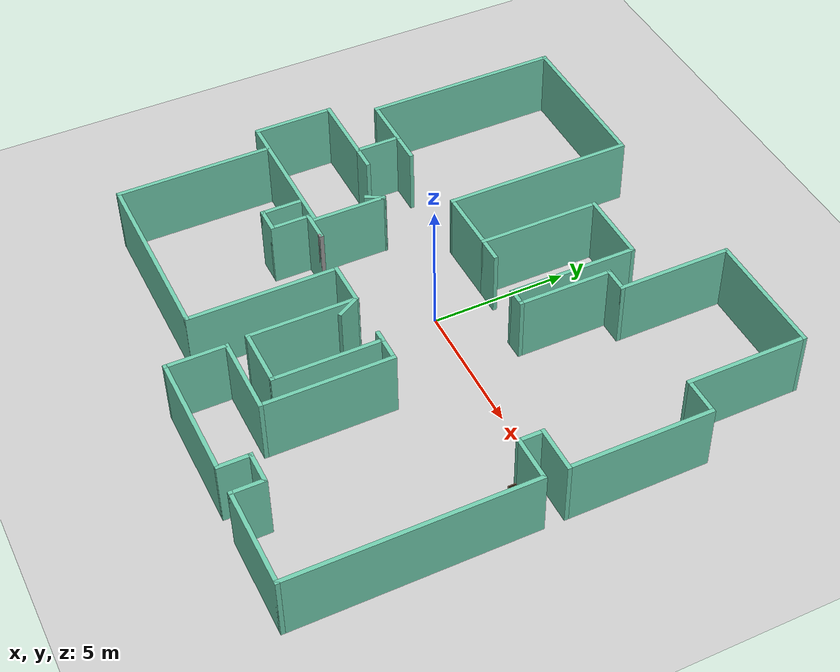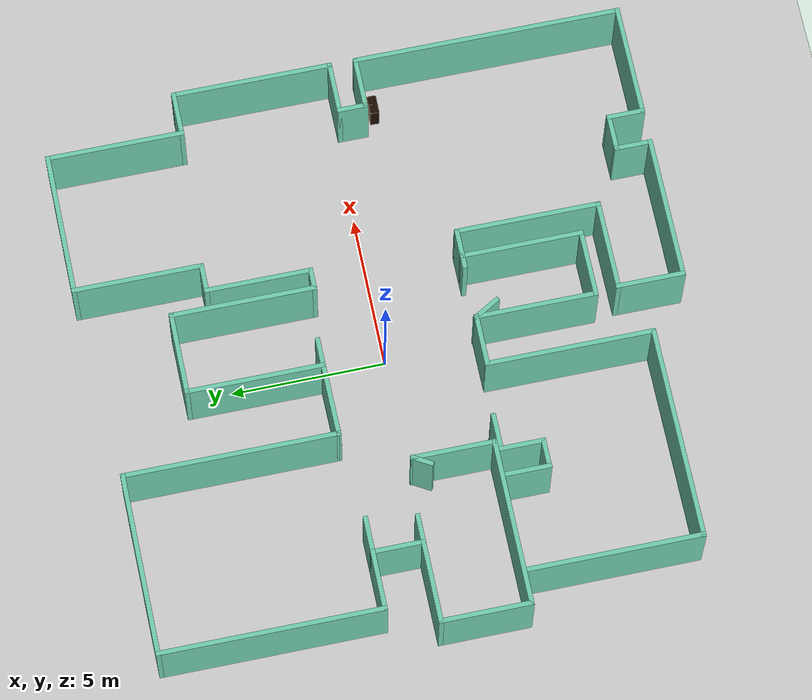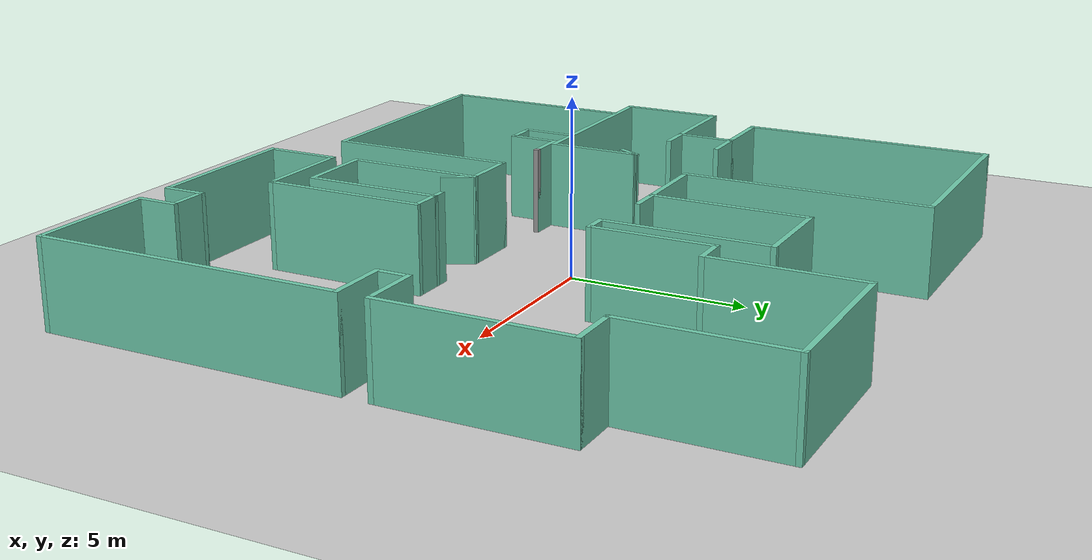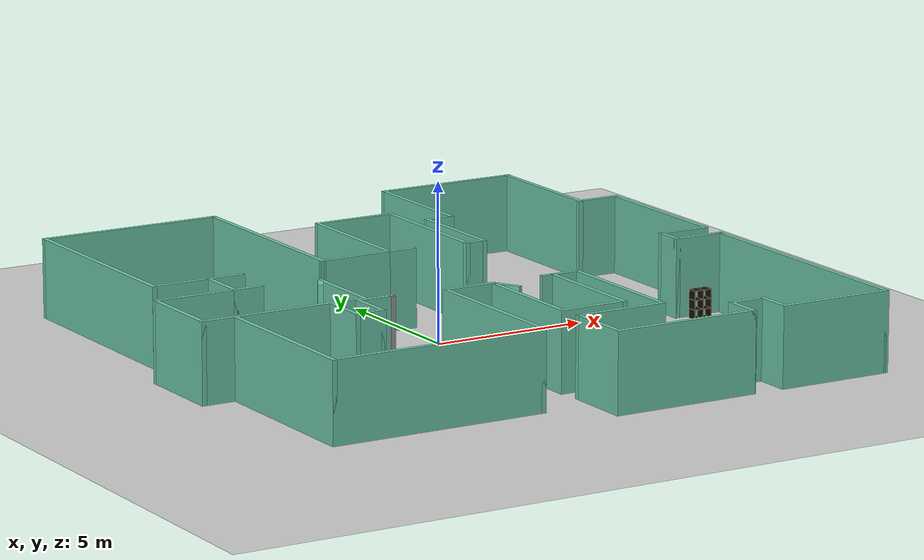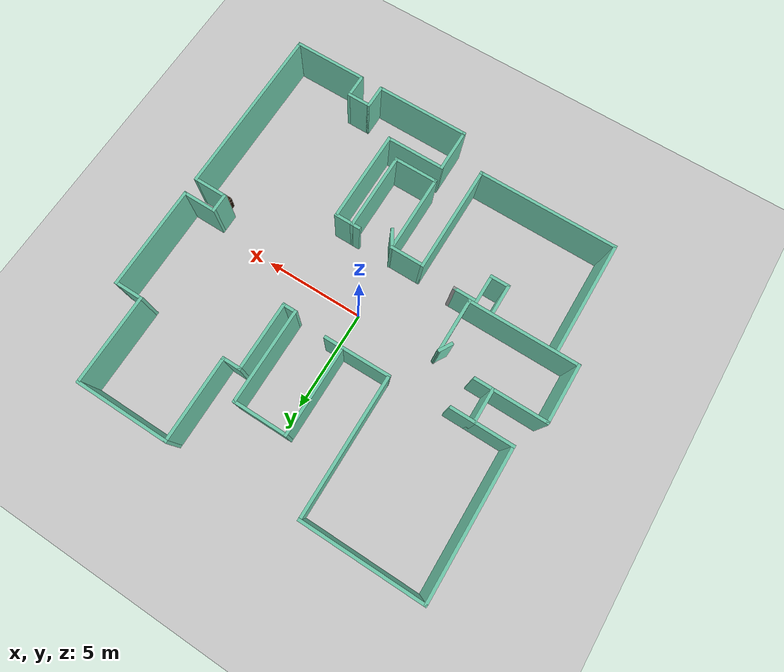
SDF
<sdf version="1.6">
 <world name="default">
  <model name="ground_plane">
   <static>1</static>
   <link name="link">
    <collision name="collision">
     <geometry><plane><normal>0 0 1</normal><size>100 100</size></plane></geometry>
     <surface>
      <contact><collide_bitmask>65535</collide_bitmask></contact>
      <friction><ode><mu>100</mu><mu2>50</mu2></ode></friction>
     </surface>
    </collision>
    <visual name="visual">
     <cast_shadows>0</cast_shadows>
     <geometry><plane><normal>0 0 1</normal><size>100 100</size></plane></geometry>
     <material>
      <script><uri>file://media/materials/scripts/gazebo.material</uri><name>Gazebo/Grey</name></script>
     </material>
    </visual>
   </link>
  </model>
  <model name="map_107">
   <pose>0.048167 -0.172119 0 0 -0 0</pose>
   <link name="Wall_10">
    <collision name="Wall_10_Collision">
     <geometry><box><size>2.75 0.15 2.5</size></box></geometry>
     <pose>0 0 1.25 0 -0 0</pose>
    </collision>
    <visual name="Wall_10_Visual">
     <pose>0 0 1.25 0 -0 0</pose>
     <geometry><box><size>2.75 0.15 2.5</size></box></geometry>
     <material>
      <script><uri>file://media/materials/scripts/gazebo.material</uri><name>Gazebo/Grey</name></script>
      <ambient>0.435294 0.796078 0.67451 1</ambient>
     </material>
     <meta><layer>0</layer></meta>
    </visual>
    <pose>-8.15979 0.403769 0 0 -0 3.14159</pose>
   </link>
   <link name="Wall_11">
    <collision name="Wall_11_Collision">
     <geometry><box><size>3 0.15 2.5</size></box></geometry>
     <pose>0 0 1.25 0 -0 0</pose>
    </collision>
    <visual name="Wall_11_Visual">
     <pose>0 0 1.25 0 -0 0</pose>
     <geometry><box><size>3 0.15 2.5</size></box></geometry>
     <material>
      <script><uri>file://media/materials/scripts/gazebo.material</uri><name>Gazebo/Grey</name></script>
      <ambient>0.435294 0.796078 0.67451 1</ambient>
     </material>
     <meta><layer>0</layer></meta>
    </visual>
    <pose>-9.45979 -1.02123 0 0 -0 -1.5708</pose>
   </link>
   <link name="Wall_12">
    <collision name="Wall_12_Collision">
     <geometry><box><size>5.5 0.15 2.5</size></box></geometry>
     <pose>0 0 1.25 0 -0 0</pose>
    </collision>
    <visual name="Wall_12_Visual">
     <pose>0 0 1.25 0 -0 0</pose>
     <geometry><box><size>5.5 0.15 2.5</size></box></geometry>
     <material>
      <script><uri>file://media/materials/scripts/gazebo.material</uri><name>Gazebo/Grey</name></script>
      <ambient>0.435294 0.796078 0.67451 1</ambient>
     </material>
     <meta><layer>0</layer></meta>
    </visual>
    <pose>-6.78479 -2.44623 0 0 -0 0</pose>
   </link>
   <link name="Wall_13">
    <collision name="Wall_13_Collision">
     <geometry><box><size>2.75 0.15 2.5</size></box></geometry>
     <pose>0 0 1.25 0 -0 0</pose>
    </collision>
    <visual name="Wall_13_Visual">
     <pose>0 0 1.25 0 -0 0</pose>
     <geometry><box><size>2.75 0.15 2.5</size></box></geometry>
     <material>
      <script><uri>file://media/materials/scripts/gazebo.material</uri><name>Gazebo/Grey</name></script>
      <ambient>0.435294 0.796078 0.67451 1</ambient>
     </material>
     <meta><layer>0</layer></meta>
    </visual>
    <pose>-4.10979 -1.14623 0 0 -0 1.5708</pose>
   </link>
   <link name="Wall_16">
    <collision name="Wall_16_Collision">
     <geometry><box><size>5.75 0.15 2.5</size></box></geometry>
     <pose>0 0 1.25 0 -0 0</pose>
    </collision>
    <visual name="Wall_16_Visual">
     <pose>0 0 1.25 0 -0 0</pose>
     <geometry><box><size>5.75 0.15 2.5</size></box></geometry>
     <material>
      <script><uri>file://media/materials/scripts/gazebo.material</uri><name>Gazebo/Grey</name></script>
      <ambient>0.435294 0.796078 0.67451 1</ambient>
     </material>
     <meta><layer>0</layer></meta>
    </visual>
    <pose>-8.39021 -5.325 0 0 -0 -1.5708</pose>
   </link>
   <link name="Wall_17">
    <collision name="Wall_17_Collision">
     <geometry><box><size>7 0.15 2.5</size></box></geometry>
     <pose>0 0 1.25 0 -0 0</pose>
    </collision>
    <visual name="Wall_17_Visual">
     <pose>0 0 1.25 0 -0 0</pose>
     <geometry><box><size>7 0.15 2.5</size></box></geometry>
     <material>
      <script><uri>file://media/materials/scripts/gazebo.material</uri><name>Gazebo/Grey</name></script>
      <ambient>0.435294 0.796078 0.67451 1</ambient>
     </material>
     <meta><layer>0</layer></meta>
    </visual>
    <pose>-4.96521 -8.125 0 0 -0 0</pose>
   </link>
   <link name="Wall_28">
    <collision name="Wall_28_Collision">
     <geometry><box><size>1.5 0.15 2.5</size></box></geometry>
     <pose>0 0 1.25 0 -0 0</pose>
    </collision>
    <visual name="Wall_28_Visual">
     <pose>0 0 1.25 0 -0 0</pose>
     <geometry><box><size>1.5 0.15 2.5</size></box></geometry>
     <material>
      <script><uri>file://media/materials/scripts/gazebo.material</uri><name>Gazebo/Grey</name></script>
      <ambient>0.435294 0.796078 0.67451 1</ambient>
     </material>
     <meta><layer>0</layer></meta>
    </visual>
    <pose>-5.23543 -3.27116 0 0 -0 -1.5708</pose>
   </link>
   <link name="Wall_29">
    <collision name="Wall_29_Collision">
     <geometry><box><size>1 0.15 2.5</size></box></geometry>
     <pose>0 0 1.25 0 -0 0</pose>
    </collision>
    <visual name="Wall_29_Visual">
     <pose>0 0 1.25 0 -0 0</pose>
     <geometry><box><size>1 0.15 2.5</size></box></geometry>
     <material>
      <script><uri>file://media/materials/scripts/gazebo.material</uri><name>Gazebo/Grey</name></script>
      <ambient>0.435294 0.796078 0.67451 1</ambient>
     </material>
     <meta><layer>0</layer></meta>
    </visual>
    <pose>-4.81043 -3.94616 0 0 -0 0</pose>
   </link>
   <link name="Wall_30">
    <collision name="Wall_30_Collision">
     <geometry><box><size>1.5 0.15 2.5</size></box></geometry>
     <pose>0 0 1.25 0 -0 0</pose>
    </collision>
    <visual name="Wall_30_Visual">
     <pose>0 0 1.25 0 -0 0</pose>
     <geometry><box><size>1.5 0.15 2.5</size></box></geometry>
     <material>
      <script><uri>file://media/materials/scripts/gazebo.material</uri><name>Gazebo/Grey</name></script>
      <ambient>0.435294 0.796078 0.67451 1</ambient>
     </material>
     <meta><layer>0</layer></meta>
    </visual>
    <pose>-4.38542 -3.27116 0 0 -0 1.5708</pose>
   </link>
   <link name="Wall_31">
    <collision name="Wall_31_Collision">
     <geometry><box><size>1.25 0.15 2.5</size></box></geometry>
     <pose>0 0 1.25 0 -0 0</pose>
    </collision>
    <visual name="Wall_31_Visual">
     <pose>0 0 1.25 0 -0 0</pose>
     <geometry><box><size>1.25 0.15 2.5</size></box></geometry>
     <material>
      <script><uri>file://media/materials/scripts/gazebo.material</uri><name>Gazebo/Grey</name></script>
      <ambient>0.435294 0.796078 0.67451 1</ambient>
     </material>
     <meta><layer>0</layer></meta>
    </visual>
    <pose>-3.83542 -2.59616 0 0 -0 0</pose>
   </link>
   <link name="Wall_32">
    <collision name="Wall_32_Collision">
     <geometry><box><size>0.16 0.15 2.5</size></box></geometry>
     <pose>0 0 1.25 0 -0 0</pose>
    </collision>
    <visual name="Wall_32_Visual">
     <pose>0 0 1.25 0 -0 0</pose>
     <geometry><box><size>0.16 0.15 2.5</size></box></geometry>
     <material>
      <script><uri>file://media/materials/scripts/gazebo.material</uri><name>Gazebo/Grey</name></script>
      <ambient>0 0 0 1</ambient>
     </material>
     <meta><layer>0</layer></meta>
    </visual>
    <pose>-3.28043 -2.59616 0 0 -0 0</pose>
   </link>
   <link name="Wall_33">
    <collision name="Wall_33_Collision">
     <geometry><box><size>5.5 0.15 2.5</size></box></geometry>
     <pose>0 0 1.25 0 -0 0</pose>
    </collision>
    <visual name="Wall_33_Visual">
     <pose>0 0 1.25 0 -0 0</pose>
     <geometry><box><size>5.5 0.15 2.5</size></box></geometry>
     <material>
      <script><uri>file://media/materials/scripts/gazebo.material</uri><name>Gazebo/Grey</name></script>
      <ambient>0.435294 0.796078 0.67451 1</ambient>
     </material>
     <meta><layer>0</layer></meta>
    </visual>
    <pose>-1.54021 -5.45 0 0 -0 1.5708</pose>
   </link>
   <link name="Wall_34">
    <collision name="Wall_34_Collision">
     <geometry><box><size>1.75 0.15 2.5</size></box></geometry>
     <pose>0 0 1.25 0 -0 0</pose>
    </collision>
    <visual name="Wall_34_Visual">
     <pose>0 0 1.25 0 -0 0</pose>
     <geometry><box><size>1.75 0.15 2.5</size></box></geometry>
     <material>
      <script><uri>file://media/materials/scripts/gazebo.material</uri><name>Gazebo/Grey</name></script>
      <ambient>0.435294 0.796078 0.67451 1</ambient>
     </material>
     <meta><layer>0</layer></meta>
    </visual>
    <pose>-0.74021 -2.775 0 0 -0 0</pose>
   </link>
   <link name="Wall_35">
    <collision name="Wall_35_Collision">
     <geometry><box><size>4 0.15 2.5</size></box></geometry>
     <pose>0 0 1.25 0 -0 0</pose>
    </collision>
    <visual name="Wall_35_Visual">
     <pose>0 0 1.25 0 -0 0</pose>
     <geometry><box><size>4 0.15 2.5</size></box></geometry>
     <material>
      <script><uri>file://media/materials/scripts/gazebo.material</uri><name>Gazebo/Grey</name></script>
      <ambient>0.435294 0.796078 0.67451 1</ambient>
     </material>
     <meta><layer>0</layer></meta>
    </visual>
    <pose>0.05979 -4.7 0 0 -0 -1.5708</pose>
   </link>
   <link name="Wall_36">
    <collision name="Wall_36_Collision">
     <geometry><box><size>2.25 0.15 2.5</size></box></geometry>
     <pose>0 0 1.25 0 -0 0</pose>
    </collision>
    <visual name="Wall_36_Visual">
     <pose>0 0 1.25 0 -0 0</pose>
     <geometry><box><size>2.25 0.15 2.5</size></box></geometry>
     <material>
      <script><uri>file://media/materials/scripts/gazebo.material</uri><name>Gazebo/Grey</name></script>
      <ambient>0.435294 0.796078 0.67451 1</ambient>
     </material>
     <meta><layer>0</layer></meta>
    </visual>
    <pose>1.10979 -6.625 0 0 -0 0</pose>
   </link>
   <link name="Wall_37">
    <collision name="Wall_37_Collision">
     <geometry><box><size>4 0.15 2.5</size></box></geometry>
     <pose>0 0 1.25 0 -0 0</pose>
    </collision>
    <visual name="Wall_37_Visual">
     <pose>0 0 1.25 0 -0 0</pose>
     <geometry><box><size>4 0.15 2.5</size></box></geometry>
     <material>
      <script><uri>file://media/materials/scripts/gazebo.material</uri><name>Gazebo/Grey</name></script>
      <ambient>0.435294 0.796078 0.67451 1</ambient>
     </material>
     <meta><layer>0</layer></meta>
    </visual>
    <pose>2.15979 -4.7 0 0 -0 1.5708</pose>
   </link>
   <link name="Wall_38">
    <collision name="Wall_38_Collision">
     <geometry><box><size>0.5 0.15 2.5</size></box></geometry>
     <pose>0 0 1.25 0 -0 0</pose>
    </collision>
    <visual name="Wall_38_Visual">
     <pose>0 0 1.25 0 -0 0</pose>
     <geometry><box><size>0.5 0.15 2.5</size></box></geometry>
     <material>
      <script><uri>file://media/materials/scripts/gazebo.material</uri><name>Gazebo/Grey</name></script>
      <ambient>0.435294 0.796078 0.67451 1</ambient>
     </material>
     <meta><layer>0</layer></meta>
    </visual>
    <pose>1.98479 -2.775 0 0 -0 3.14159</pose>
   </link>
   <link name="Wall_41">
    <collision name="Wall_41_Collision">
     <geometry><box><size>1 0.15 2.5</size></box></geometry>
     <pose>0 0 1.25 0 -0 0</pose>
    </collision>
    <visual name="Wall_41_Visual">
     <pose>0 0 1.25 0 -0 0</pose>
     <geometry><box><size>1 0.15 2.5</size></box></geometry>
     <material>
      <script><uri>file://media/materials/scripts/gazebo.material</uri><name>Gazebo/Grey</name></script>
      <ambient>0.435294 0.796078 0.67451 1</ambient>
     </material>
     <meta><layer>0</layer></meta>
    </visual>
    <pose>2.58479 -2.775 0 0 -0 0</pose>
   </link>
   <link name="Wall_42">
    <collision name="Wall_42_Collision">
     <geometry><box><size>4.75 0.15 2.5</size></box></geometry>
     <pose>0 0 1.25 0 -0 0</pose>
    </collision>
    <visual name="Wall_42_Visual">
     <pose>0 0 1.25 0 -0 0</pose>
     <geometry><box><size>4.75 0.15 2.5</size></box></geometry>
     <material>
      <script><uri>file://media/materials/scripts/gazebo.material</uri><name>Gazebo/Grey</name></script>
      <ambient>0.435294 0.796078 0.67451 1</ambient>
     </material>
     <meta><layer>0</layer></meta>
    </visual>
    <pose>3.00979 -5.075 0 0 -0 -1.5708</pose>
   </link>
   <link name="Wall_43">
    <collision name="Wall_43_Collision">
     <geometry><box><size>3 0.15 2.5</size></box></geometry>
     <pose>0 0 1.25 0 -0 0</pose>
    </collision>
    <visual name="Wall_43_Visual">
     <pose>0 0 1.25 0 -0 0</pose>
     <geometry><box><size>3 0.15 2.5</size></box></geometry>
     <material>
      <script><uri>file://media/materials/scripts/gazebo.material</uri><name>Gazebo/Grey</name></script>
      <ambient>0.435294 0.796078 0.67451 1</ambient>
     </material>
     <meta><layer>0</layer></meta>
    </visual>
    <pose>1.58479 -7.375 0 0 -0 3.14159</pose>
   </link>
   <link name="Wall_44">
    <collision name="Wall_44_Collision">
     <geometry><box><size>2.25 0.15 2.5</size></box></geometry>
     <pose>0 0 1.25 0 -0 0</pose>
    </collision>
    <visual name="Wall_44_Visual">
     <pose>0 0 1.25 0 -0 0</pose>
     <geometry><box><size>2.25 0.15 2.5</size></box></geometry>
     <material>
      <script><uri>file://media/materials/scripts/gazebo.material</uri><name>Gazebo/Grey</name></script>
      <ambient>0.435294 0.796078 0.67451 1</ambient>
     </material>
     <meta><layer>0</layer></meta>
    </visual>
    <pose>0.15979 -8.425 0 0 -0 -1.5708</pose>
   </link>
   <link name="Wall_47">
    <collision name="Wall_47_Collision">
     <geometry><box><size>4.75 0.15 2.5</size></box></geometry>
     <pose>0 0 1.25 0 -0 0</pose>
    </collision>
    <visual name="Wall_47_Visual">
     <pose>0 0 1.25 0 -0 0</pose>
     <geometry><box><size>4.75 0.15 2.5</size></box></geometry>
     <material>
      <script><uri>file://media/materials/scripts/gazebo.material</uri><name>Gazebo/Grey</name></script>
      <ambient>0.435294 0.796078 0.67451 1</ambient>
     </material>
     <meta><layer>0</layer></meta>
    </visual>
    <pose>2.45979 -9.475 0 0 -0 0</pose>
   </link>
   <link name="Wall_48">
    <collision name="Wall_48_Collision">
     <geometry><box><size>1.25 0.15 2.5</size></box></geometry>
     <pose>0 0 1.25 0 -0 0</pose>
    </collision>
    <visual name="Wall_48_Visual">
     <pose>0 0 1.25 0 -0 0</pose>
     <geometry><box><size>1.25 0.15 2.5</size></box></geometry>
     <material>
      <script><uri>file://media/materials/scripts/gazebo.material</uri><name>Gazebo/Grey</name></script>
      <ambient>0.435294 0.796078 0.67451 1</ambient>
     </material>
     <meta><layer>0</layer></meta>
    </visual>
    <pose>4.75979 -8.925 0 0 -0 1.5708</pose>
   </link>
   <link name="Wall_49">
    <collision name="Wall_49_Collision">
     <geometry><box><size>1.25 0.15 2.5</size></box></geometry>
     <pose>0 0 1.25 0 -0 0</pose>
    </collision>
    <visual name="Wall_49_Visual">
     <pose>0 0 1.25 0 -0 0</pose>
     <geometry><box><size>1.25 0.15 2.5</size></box></geometry>
     <material>
      <script><uri>file://media/materials/scripts/gazebo.material</uri><name>Gazebo/Grey</name></script>
      <ambient>0.435294 0.796078 0.67451 1</ambient>
     </material>
     <meta><layer>0</layer></meta>
    </visual>
    <pose>5.30979 -8.375 0 0 -0 0</pose>
   </link>
   <link name="Wall_50">
    <collision name="Wall_50_Collision">
     <geometry><box><size>1.25 0.15 2.5</size></box></geometry>
     <pose>0 0 1.25 0 -0 0</pose>
    </collision>
    <visual name="Wall_50_Visual">
     <pose>0 0 1.25 0 -0 0</pose>
     <geometry><box><size>1.25 0.15 2.5</size></box></geometry>
     <material>
      <script><uri>file://media/materials/scripts/gazebo.material</uri><name>Gazebo/Grey</name></script>
      <ambient>0.435294 0.796078 0.67451 1</ambient>
     </material>
     <meta><layer>0</layer></meta>
    </visual>
    <pose>5.85979 -8.925 0 0 -0 -1.5708</pose>
   </link>
   <link name="Wall_51">
    <collision name="Wall_51_Collision">
     <geometry><box><size>3.75 0.15 2.5</size></box></geometry>
     <pose>0 0 1.25 0 -0 0</pose>
    </collision>
    <visual name="Wall_51_Visual">
     <pose>0 0 1.25 0 -0 0</pose>
     <geometry><box><size>3.75 0.15 2.5</size></box></geometry>
     <material>
      <script><uri>file://media/materials/scripts/gazebo.material</uri><name>Gazebo/Grey</name></script>
      <ambient>0.435294 0.796078 0.67451 1</ambient>
     </material>
     <meta><layer>0</layer></meta>
    </visual>
    <pose>7.65979 -9.475 0 0 -0 0</pose>
   </link>
   <link name="Wall_53">
    <collision name="Wall_53_Collision">
     <geometry><box><size>1.5 0.15 2.5</size></box></geometry>
     <pose>0 0 1.25 0 -0 0</pose>
    </collision>
    <visual name="Wall_53_Visual">
     <pose>0 0 1.25 0 -0 0</pose>
     <geometry><box><size>1.5 0.15 2.5</size></box></geometry>
     <material>
      <script><uri>file://media/materials/scripts/gazebo.material</uri><name>Gazebo/Grey</name></script>
      <ambient>0.435294 0.796078 0.67451 1</ambient>
     </material>
     <meta><layer>0</layer></meta>
    </visual>
    <pose>8.78479 5.125 0 0 -0 3.14159</pose>
   </link>
   <link name="Wall_54">
    <collision name="Wall_54_Collision">
     <geometry><box><size>4.5 0.15 2.5</size></box></geometry>
     <pose>0 0 1.25 0 -0 0</pose>
    </collision>
    <visual name="Wall_54_Visual">
     <pose>0 0 1.25 0 -0 0</pose>
     <geometry><box><size>4.5 0.15 2.5</size></box></geometry>
     <material>
      <script><uri>file://media/materials/scripts/gazebo.material</uri><name>Gazebo/Grey</name></script>
      <ambient>0.435294 0.796078 0.67451 1</ambient>
     </material>
     <meta><layer>0</layer></meta>
    </visual>
    <pose>8.10979 7.3 0 0 -0 1.5708</pose>
   </link>
   <link name="Wall_55">
    <collision name="Wall_55_Collision">
     <geometry><box><size>4.75 0.15 2.5</size></box></geometry>
     <pose>0 0 1.25 0 -0 0</pose>
    </collision>
    <visual name="Wall_55_Visual">
     <pose>0 0 1.25 0 -0 0</pose>
     <geometry><box><size>4.75 0.15 2.5</size></box></geometry>
     <material>
      <script><uri>file://media/materials/scripts/gazebo.material</uri><name>Gazebo/Grey</name></script>
      <ambient>0.435294 0.796078 0.67451 1</ambient>
     </material>
     <meta><layer>0</layer></meta>
    </visual>
    <pose>5.80979 9.475 0 0 -0 3.14159</pose>
   </link>
   <link name="Wall_56">
    <collision name="Wall_56_Collision">
     <geometry><box><size>4.25 0.15 2.5</size></box></geometry>
     <pose>0 0 1.25 0 -0 0</pose>
    </collision>
    <visual name="Wall_56_Visual">
     <pose>0 0 1.25 0 -0 0</pose>
     <geometry><box><size>4.25 0.15 2.5</size></box></geometry>
     <material>
      <script><uri>file://media/materials/scripts/gazebo.material</uri><name>Gazebo/Grey</name></script>
      <ambient>0.435294 0.796078 0.67451 1</ambient>
     </material>
     <meta><layer>0</layer></meta>
    </visual>
    <pose>3.50979 7.425 0 0 -0 -1.5708</pose>
   </link>
   <link name="Wall_57">
    <collision name="Wall_57_Collision">
     <geometry><box><size>1 0.15 2.5</size></box></geometry>
     <pose>0 0 1.25 0 -0 0</pose>
    </collision>
    <visual name="Wall_57_Visual">
     <pose>0 0 1.25 0 -0 0</pose>
     <geometry><box><size>1 0.15 2.5</size></box></geometry>
     <material>
      <script><uri>file://media/materials/scripts/gazebo.material</uri><name>Gazebo/Grey</name></script>
      <ambient>0.435294 0.796078 0.67451 1</ambient>
     </material>
     <meta><layer>0</layer></meta>
    </visual>
    <pose>3.08479 5.375 0 0 -0 3.14159</pose>
   </link>
   <link name="Wall_58">
    <collision name="Wall_58_Collision">
     <geometry><box><size>3.5 0.15 2.5</size></box></geometry>
     <pose>0 0 1.25 0 -0 0</pose>
    </collision>
    <visual name="Wall_58_Visual">
     <pose>0 0 1.25 0 -0 0</pose>
     <geometry><box><size>3.5 0.15 2.5</size></box></geometry>
     <material>
      <script><uri>file://media/materials/scripts/gazebo.material</uri><name>Gazebo/Grey</name></script>
      <ambient>0.435294 0.796078 0.67451 1</ambient>
     </material>
     <meta><layer>0</layer></meta>
    </visual>
    <pose>2.65979 3.7 0 0 -0 -1.5708</pose>
   </link>
   <link name="Wall_59">
    <collision name="Wall_59_Collision">
     <geometry><box><size>0.75 0.15 2.5</size></box></geometry>
     <pose>0 0 1.25 0 -0 0</pose>
    </collision>
    <visual name="Wall_59_Visual">
     <pose>0 0 1.25 0 -0 0</pose>
     <geometry><box><size>0.75 0.15 2.5</size></box></geometry>
     <material>
      <script><uri>file://media/materials/scripts/gazebo.material</uri><name>Gazebo/Grey</name></script>
      <ambient>0.435294 0.796078 0.67451 1</ambient>
     </material>
     <meta><layer>0</layer></meta>
    </visual>
    <pose>2.35979 2.025 0 0 -0 3.14159</pose>
   </link>
   <link name="Wall_60">
    <collision name="Wall_60_Collision">
     <geometry><box><size>4.75 0.15 2.5</size></box></geometry>
     <pose>0 0 1.25 0 -0 0</pose>
    </collision>
    <visual name="Wall_60_Visual">
     <pose>0 0 1.25 0 -0 0</pose>
     <geometry><box><size>4.75 0.15 2.5</size></box></geometry>
     <material>
      <script><uri>file://media/materials/scripts/gazebo.material</uri><name>Gazebo/Grey</name></script>
      <ambient>0.435294 0.796078 0.67451 1</ambient>
     </material>
     <meta><layer>0</layer></meta>
    </visual>
    <pose>2.05979 4.325 0 0 -0 1.5708</pose>
   </link>
   <link name="Wall_61">
    <collision name="Wall_61_Collision">
     <geometry><box><size>2.75 0.15 2.5</size></box></geometry>
     <pose>0 0 1.25 0 -0 0</pose>
    </collision>
    <visual name="Wall_61_Visual">
     <pose>0 0 1.25 0 -0 0</pose>
     <geometry><box><size>2.75 0.15 2.5</size></box></geometry>
     <material>
      <script><uri>file://media/materials/scripts/gazebo.material</uri><name>Gazebo/Grey</name></script>
      <ambient>0.435294 0.796078 0.67451 1</ambient>
     </material>
     <meta><layer>0</layer></meta>
    </visual>
    <pose>0.75979 6.625 0 0 -0 3.14159</pose>
   </link>
   <link name="Wall_62">
    <collision name="Wall_62_Collision">
     <geometry><box><size>4.5 0.15 2.5</size></box></geometry>
     <pose>0 0 1.25 0 -0 0</pose>
    </collision>
    <visual name="Wall_62_Visual">
     <pose>0 0 1.25 0 -0 0</pose>
     <geometry><box><size>4.5 0.15 2.5</size></box></geometry>
     <material>
      <script><uri>file://media/materials/scripts/gazebo.material</uri><name>Gazebo/Grey</name></script>
      <ambient>0.435294 0.796078 0.67451 1</ambient>
     </material>
     <meta><layer>0</layer></meta>
    </visual>
    <pose>-0.54021 4.45 0 0 -0 -1.5708</pose>
   </link>
   <link name="Wall_63">
    <collision name="Wall_63_Collision">
     <geometry><box><size>1 0.15 2.5</size></box></geometry>
     <pose>0 0 1.25 0 -0 0</pose>
    </collision>
    <visual name="Wall_63_Visual">
     <pose>0 0 1.25 0 -0 0</pose>
     <geometry><box><size>1 0.15 2.5</size></box></geometry>
     <material>
      <script><uri>file://media/materials/scripts/gazebo.material</uri><name>Gazebo/Grey</name></script>
      <ambient>0.435294 0.796078 0.67451 1</ambient>
     </material>
     <meta><layer>0</layer></meta>
    </visual>
    <pose>-0.11521 2.275 0 0 -0 0</pose>
   </link>
   <link name="Wall_65">
    <collision name="Wall_65_Collision">
     <geometry><box><size>6 0.15 2.5</size></box></geometry>
     <pose>0 0 1.25 0 -0 0</pose>
    </collision>
    <visual name="Wall_65_Visual">
     <pose>0 0 1.25 0 -0 0</pose>
     <geometry><box><size>6 0.15 2.5</size></box></geometry>
     <material>
      <script><uri>file://media/materials/scripts/gazebo.material</uri><name>Gazebo/Grey</name></script>
      <ambient>0.435294 0.796078 0.67451 1</ambient>
     </material>
     <meta><layer>0</layer></meta>
    </visual>
    <pose>-5.78479 9.10377 0 0 -0 0</pose>
   </link>
   <link name="Wall_66">
    <collision name="Wall_66_Collision">
     <geometry><box><size>7 0.15 2.5</size></box></geometry>
     <pose>0 0 1.25 0 -0 0</pose>
    </collision>
    <visual name="Wall_66_Visual">
     <pose>0 0 1.25 0 -0 0</pose>
     <geometry><box><size>7 0.15 2.5</size></box></geometry>
     <material>
      <script><uri>file://media/materials/scripts/gazebo.material</uri><name>Gazebo/Grey</name></script>
      <ambient>0.435294 0.796078 0.67451 1</ambient>
     </material>
     <meta><layer>0</layer></meta>
    </visual>
    <pose>-2.85979 5.67877 0 0 -0 -1.5708</pose>
   </link>
   <link name="Wall_67">
    <collision name="Wall_67_Collision">
     <geometry><box><size>2.46968 0.15 2.5</size></box></geometry>
     <pose>0 0 1.25 0 -0 0</pose>
    </collision>
    <visual name="Wall_67_Visual">
     <pose>0 0 1.25 0 -0 0</pose>
     <geometry><box><size>2.46968 0.15 2.5</size></box></geometry>
     <material>
      <script><uri>file://media/materials/scripts/gazebo.material</uri><name>Gazebo/Grey</name></script>
      <ambient>0.435294 0.796078 0.67451 1</ambient>
     </material>
     <meta><layer>0</layer></meta>
    </visual>
    <pose>-1.7 2.26438 0 0 -0 0.009153</pose>
   </link>
   <link name="Wall_69">
    <collision name="Wall_69_Collision">
     <geometry><box><size>1.25 0.15 2.5</size></box></geometry>
     <pose>0 0 1.25 0 -0 0</pose>
    </collision>
    <visual name="Wall_69_Visual">
     <pose>0 0 1.25 0 -0 0</pose>
     <geometry><box><size>1.25 0.15 2.5</size></box></geometry>
     <material>
      <script><uri>file://media/materials/scripts/gazebo.material</uri><name>Gazebo/Grey</name></script>
      <ambient>0.435294 0.796078 0.67451 1</ambient>
     </material>
     <meta><layer>0</layer></meta>
    </visual>
    <pose>-6.30979 2.00377 0 0 -0 0</pose>
   </link>
   <link name="Wall_7">
    <collision name="Wall_7_Collision">
     <geometry><box><size>7.25 0.15 2.5</size></box></geometry>
     <pose>0 0 1.25 0 -0 0</pose>
    </collision>
    <visual name="Wall_7_Visual">
     <pose>0 0 1.25 0 -0 0</pose>
     <geometry><box><size>7.25 0.15 2.5</size></box></geometry>
     <material>
      <script><uri>file://media/materials/scripts/gazebo.material</uri><name>Gazebo/Grey</name></script>
      <ambient>0.435294 0.796078 0.67451 1</ambient>
     </material>
     <meta><layer>0</layer></meta>
    </visual>
    <pose>-8.70979 5.55377 0 0 -0 -1.5708</pose>
   </link>
   <link name="Wall_71">
    <collision name="Wall_71_Collision">
     <geometry><box><size>1 0.15 2.5</size></box></geometry>
     <pose>0 0 1.25 0 -0 0</pose>
    </collision>
    <visual name="Wall_71_Visual">
     <pose>0 0 1.25 0 -0 0</pose>
     <geometry><box><size>1 0.15 2.5</size></box></geometry>
     <material>
      <script><uri>file://media/materials/scripts/gazebo.material</uri><name>Gazebo/Grey</name></script>
      <ambient>0.435294 0.796078 0.67451 1</ambient>
     </material>
     <meta><layer>0</layer></meta>
    </visual>
    <pose>0.27229 -3.14306 0 0 -0 -1.0472</pose>
   </link>
   <link name="Wall_73">
    <collision name="Wall_73_Collision">
     <geometry><box><size>5.25 0.15 2.5</size></box></geometry>
     <pose>0 0 1.25 0 -0 0</pose>
    </collision>
    <visual name="Wall_73_Visual">
     <pose>0 0 1.25 0 -0 0</pose>
     <geometry><box><size>5.25 0.15 2.5</size></box></geometry>
     <material>
      <script><uri>file://media/materials/scripts/gazebo.material</uri><name>Gazebo/Grey</name></script>
      <ambient>0.435294 0.796078 0.67451 1</ambient>
     </material>
     <meta><layer>0</layer></meta>
    </visual>
    <pose>9.45979 2.575 0 0 -0 -1.5708</pose>
   </link>
   <link name="Wall_74">
    <collision name="Wall_74_Collision">
     <geometry><box><size>1.75 0.15 2.5</size></box></geometry>
     <pose>0 0 1.25 0 -0 0</pose>
    </collision>
    <visual name="Wall_74_Visual">
     <pose>0 0 1.25 0 -0 0</pose>
     <geometry><box><size>1.75 0.15 2.5</size></box></geometry>
     <material>
      <script><uri>file://media/materials/scripts/gazebo.material</uri><name>Gazebo/Grey</name></script>
      <ambient>0.435294 0.796078 0.67451 1</ambient>
     </material>
     <meta><layer>0</layer></meta>
    </visual>
    <pose>8.65979 0.025 0 0 -0 3.14159</pose>
   </link>
   <link name="Wall_75">
    <collision name="Wall_75_Collision">
     <geometry><box><size>1 0.15 2.5</size></box></geometry>
     <pose>0 0 1.25 0 -0 0</pose>
    </collision>
    <visual name="Wall_75_Visual">
     <pose>0 0 1.25 0 -0 0</pose>
     <geometry><box><size>1 0.15 2.5</size></box></geometry>
     <material>
      <script><uri>file://media/materials/scripts/gazebo.material</uri><name>Gazebo/Grey</name></script>
      <ambient>0.435294 0.796078 0.67451 1</ambient>
     </material>
     <meta><layer>0</layer></meta>
    </visual>
    <pose>7.85979 -0.4 0 0 -0 -1.5708</pose>
   </link>
   <link name="Wall_79">
    <collision name="Wall_79_Collision">
     <geometry><box><size>1.75 0.15 2.5</size></box></geometry>
     <pose>0 0 1.25 0 -0 0</pose>
    </collision>
    <visual name="Wall_79_Visual">
     <pose>0 0 1.25 0 -0 0</pose>
     <geometry><box><size>1.75 0.15 2.5</size></box></geometry>
     <material>
      <script><uri>file://media/materials/scripts/gazebo.material</uri><name>Gazebo/Grey</name></script>
      <ambient>0.435294 0.796078 0.67451 1</ambient>
     </material>
     <meta><layer>0</layer></meta>
    </visual>
    <pose>8.65979 -0.825 0 0 -0 0</pose>
   </link>
   <link name="Wall_8">
    <collision name="Wall_8_Collision">
     <geometry><box><size>2 0.15 2.5</size></box></geometry>
     <pose>0 0 1.25 0 -0 0</pose>
    </collision>
    <visual name="Wall_8_Visual">
     <pose>0 0 1.25 0 -0 0</pose>
     <geometry><box><size>2 0.15 2.5</size></box></geometry>
     <material>
      <script><uri>file://media/materials/scripts/gazebo.material</uri><name>Gazebo/Grey</name></script>
      <ambient>0.435294 0.796078 0.67451 1</ambient>
     </material>
     <meta><layer>0</layer></meta>
    </visual>
    <pose>-7.78479 2.00377 0 0 -0 0</pose>
   </link>
   <link name="Wall_80">
    <collision name="Wall_80_Collision">
     <geometry><box><size>8.8 0.15 2.5</size></box></geometry>
     <pose>0 0 1.25 0 -0 0</pose>
    </collision>
    <visual name="Wall_80_Visual">
     <pose>0 0 1.25 0 -0 0</pose>
     <geometry><box><size>8.8 0.15 2.5</size></box></geometry>
     <material>
      <script><uri>file://media/materials/scripts/gazebo.material</uri><name>Gazebo/Grey</name></script>
      <ambient>0.435294 0.796078 0.67451 1</ambient>
     </material>
     <meta><layer>0</layer></meta>
    </visual>
    <pose>9.45979 -5.15 0 0 -0 -1.5708</pose>
   </link>
   <link name="Wall_82">
    <collision name="Wall_82_Collision">
     <geometry><box><size>1 0.15 2.5</size></box></geometry>
     <pose>0 0 1.25 0 -0 0</pose>
    </collision>
    <visual name="Wall_82_Visual">
     <pose>0 0 1.25 0 -0 0</pose>
     <geometry><box><size>1 0.15 2.5</size></box></geometry>
     <material>
      <script><uri>file://media/materials/scripts/gazebo.material</uri><name>Gazebo/Grey</name></script>
      <ambient>0.435294 0.796078 0.67451 1</ambient>
     </material>
     <meta><layer>0</layer></meta>
    </visual>
    <pose>-6.43479 0.403769 0 0 -0 0</pose>
   </link>
   <link name="Wall_84">
    <collision name="Wall_84_Collision">
     <geometry><box><size>0.75 0.15 2.5</size></box></geometry>
     <pose>0 0 1.25 0 -0 0</pose>
    </collision>
    <visual name="Wall_84_Visual">
     <pose>0 0 1.25 0 -0 0</pose>
     <geometry><box><size>0.75 0.15 2.5</size></box></geometry>
     <material>
      <script><uri>file://media/materials/scripts/gazebo.material</uri><name>Gazebo/Grey</name></script>
      <ambient>0.435294 0.796078 0.67451 1</ambient>
     </material>
     <meta><layer>0</layer></meta>
    </visual>
    <pose>-4.25979 -0.106039 0 0 -0 -2.0944</pose>
   </link>
   <link name="Wall_9">
    <collision name="Wall_9_Collision">
     <geometry><box><size>1.75 0.15 2.5</size></box></geometry>
     <pose>0 0 1.25 0 -0 0</pose>
    </collision>
    <visual name="Wall_9_Visual">
     <pose>0 0 1.25 0 -0 0</pose>
     <geometry><box><size>1.75 0.15 2.5</size></box></geometry>
     <material>
      <script><uri>file://media/materials/scripts/gazebo.material</uri><name>Gazebo/Grey</name></script>
      <ambient>0.435294 0.796078 0.67451 1</ambient>
     </material>
     <meta><layer>0</layer></meta>
    </visual>
    <pose>-6.85979 1.20377 0 0 -0 -1.5708</pose>
   </link>
   <static>1</static>
  </model>
  <model name="6_Cube_StorageE">
   <link name="Wall_0">
    <pose>0 0 0.01 0 -0 0</pose>
    <inertial>
     <mass>1.6201</mass>
     <inertia><ixx>0.0119</ixx><iyy>0.0631</iyy><izz>0.0513</izz><ixy>0</ixy><ixz>0</ixz><iyz>0</iyz></inertia>
    </inertial>
    <collision name="Wall_0_Collision"><geometry><box><size>0.616 0.296 0.02</size></box></geometry></collision>
    <visual name="Wall_0_Visual">
     <geometry><box><size>0.616 0.296 0.02</size></box></geometry>
     <material>
      <script><uri>file://media/materials/scripts/gazebo.material</uri><name>Gazebo/Grey</name></script>
      <ambient>0.105882 0.0509804 0 1</ambient>
     </material>
    </visual>
   </link>
   <joint name="0_2" type="fixed">
    <pose>-0.308 0 0 0 -0 0</pose>
    <parent>Wall_2</parent>
    <child>Wall_0</child>
    <axis>
     <xyz>1 0 0</xyz>
     <use_parent_model_frame>0</use_parent_model_frame>
     <limit><lower>-1e+16</lower><upper>1e+16</upper></limit>
    </axis>
   </joint>
   <joint name="0_12" type="fixed">
    <parent>Wall_12</parent>
    <child>Wall_0</child>
    <axis>
     <xyz>0 0 1</xyz>
     <use_parent_model_frame>0</use_parent_model_frame>
     <limit><lower>-1e+16</lower><upper>1e+16</upper></limit>
    </axis>
   </joint>
   <joint name="0_4" type="fixed">
    <pose>0.308 0 0 0 -0 0</pose>
    <parent>Wall_4</parent>
    <child>Wall_0</child>
    <axis>
     <xyz>1 0 0</xyz>
     <use_parent_model_frame>0</use_parent_model_frame>
     <limit><lower>-1e+16</lower><upper>1e+16</upper></limit>
    </axis>
   </joint>
   <link name="Wall_10">
    <pose>0 0 0.61 0 -0 0</pose>
    <inertial>
     <mass>1.6201</mass>
     <inertia><ixx>0.0119</ixx><iyy>0.0631</iyy><izz>0.0513</izz><ixy>0</ixy><ixz>0</ixz><iyz>0</iyz></inertia>
    </inertial>
    <collision name="Wall_10_Collision"><geometry><box><size>0.616 0.296 0.02</size></box></geometry></collision>
    <visual name="Wall_10_Visual">
     <geometry><box><size>0.616 0.296 0.02</size></box></geometry>
     <material>
      <script><uri>file://media/materials/scripts/gazebo.material</uri><name>Gazebo/Grey</name></script>
      <ambient>0.105882 0.0509804 0 1</ambient>
     </material>
    </visual>
   </link>
   <joint name="10_2" type="fixed">
    <pose>-0.308 0 0 0 -0 0</pose>
    <parent>Wall_2</parent>
    <child>Wall_10</child>
    <axis>
     <xyz>1 0 0</xyz>
     <use_parent_model_frame>0</use_parent_model_frame>
     <limit><lower>-1e+16</lower><upper>1e+16</upper></limit>
    </axis>
   </joint>
   <joint name="10_12" type="fixed">
    <parent>Wall_12</parent>
    <child>Wall_10</child>
    <axis>
     <xyz>0 0 1</xyz>
     <use_parent_model_frame>0</use_parent_model_frame>
     <limit><lower>-1e+16</lower><upper>1e+16</upper></limit>
    </axis>
   </joint>
   <joint name="10_4" type="fixed">
    <pose>0.308 0 0 0 -0 0</pose>
    <parent>Wall_4</parent>
    <child>Wall_10</child>
    <axis>
     <xyz>1 0 0</xyz>
     <use_parent_model_frame>0</use_parent_model_frame>
     <limit><lower>-1e+16</lower><upper>1e+16</upper></limit>
    </axis>
   </joint>
   <link name="Wall_12">
    <pose>0 0 0.4575 0 -0 0</pose>
    <inertial>
     <mass>2.4065</mass>
     <inertia><ixx>0.0177</ixx><iyy>0.1855</iyy><izz>0.168</izz><ixy>0</ixy><ixz>0</ixz><iyz>0</iyz></inertia>
    </inertial>
    <collision name="Wall_12_Collision"><geometry><box><size>0.02 0.296 0.915</size></box></geometry></collision>
    <visual name="Wall_12_Visual">
     <geometry><box><size>0.02 0.296 0.915</size></box></geometry>
     <material>
      <script><uri>file://media/materials/scripts/gazebo.material</uri><name>Gazebo/Grey</name></script>
      <ambient>0.105882 0.0509804 0 1</ambient>
     </material>
    </visual>
   </link>
   <link name="Wall_2">
    <pose>-0.298 0 0.4575 0 -0 0</pose>
    <inertial>
     <mass>2.4065</mass>
     <inertia><ixx>0.0177</ixx><iyy>0.1855</iyy><izz>0.168</izz><ixy>0</ixy><ixz>0</ixz><iyz>0</iyz></inertia>
    </inertial>
    <collision name="Wall_2_Collision"><geometry><box><size>0.02 0.296 0.915</size></box></geometry></collision>
    <visual name="Wall_2_Visual">
     <geometry><box><size>0.02 0.296 0.915</size></box></geometry>
     <material>
      <script><uri>file://media/materials/scripts/gazebo.material</uri><name>Gazebo/Grey</name></script>
      <ambient>0.105882 0.0509804 0 1</ambient>
     </material>
    </visual>
   </link>
   <link name="Wall_4">
    <pose>0.298 0 0.4575 0 -0 0</pose>
    <inertial>
     <mass>2.4065</mass>
     <inertia><ixx>0.0177</ixx><iyy>0.1855</iyy><izz>0.168</izz><ixy>0</ixy><ixz>0</ixz><iyz>0</iyz></inertia>
    </inertial>
    <collision name="Wall_4_Collision"><geometry><box><size>0.02 0.296 0.915</size></box></geometry></collision>
    <visual name="Wall_4_Visual">
     <geometry><box><size>0.02 0.296 0.915</size></box></geometry>
     <material>
      <script><uri>file://media/materials/scripts/gazebo.material</uri><name>Gazebo/Grey</name></script>
      <ambient>0.105882 0.0509804 0 1</ambient>
     </material>
    </visual>
   </link>
   <link name="Wall_6">
    <pose>0 0 0.905 0 -0 0</pose>
    <inertial>
     <mass>1.6201</mass>
     <inertia><ixx>0.0119</ixx><iyy>0.0631</iyy><izz>0.0513</izz><ixy>0</ixy><ixz>0</ixz><iyz>0</iyz></inertia>
    </inertial>
    <collision name="Wall_6_Collision"><geometry><box><size>0.616 0.296 0.02</size></box></geometry></collision>
    <visual name="Wall_6_Visual">
     <geometry><box><size>0.616 0.296 0.02</size></box></geometry>
     <material>
      <script><uri>file://media/materials/scripts/gazebo.material</uri><name>Gazebo/Grey</name></script>
      <ambient>0.105882 0.0509804 0 1</ambient>
     </material>
    </visual>
   </link>
   <joint name="6_2" type="fixed">
    <pose>-0.308 0 0 0 -0 0</pose>
    <parent>Wall_2</parent>
    <child>Wall_6</child>
    <axis>
     <xyz>2 0 0</xyz>
     <use_parent_model_frame>0</use_parent_model_frame>
     <limit><lower>-1e+16</lower><upper>1e+16</upper></limit>
    </axis>
   </joint>
   <joint name="6_12" type="fixed">
    <parent>Wall_12</parent>
    <child>Wall_6</child>
    <axis>
     <xyz>0 0 1</xyz>
     <use_parent_model_frame>0</use_parent_model_frame>
     <limit><lower>-1e+16</lower><upper>1e+16</upper></limit>
    </axis>
   </joint>
   <joint name="6_4" type="fixed">
    <pose>0.308 0 0 0 -0 0</pose>
    <parent>Wall_4</parent>
    <child>Wall_6</child>
    <axis>
     <xyz>1 0 0</xyz>
     <use_parent_model_frame>0</use_parent_model_frame>
     <limit><lower>-1e+16</lower><upper>1e+16</upper></limit>
    </axis>
   </joint>
   <link name="Wall_8">
    <pose>0 0 0.305 0 -0 0</pose>
    <inertial>
     <mass>1.6201</mass>
     <inertia><ixx>0.0119</ixx><iyy>0.0631</iyy><izz>0.0513</izz><ixy>0</ixy><ixz>0</ixz><iyz>0</iyz></inertia>
    </inertial>
    <collision name="Wall_8_Collision"><geometry><box><size>0.616 0.296 0.02</size></box></geometry></collision>
    <visual name="Wall_8_Visual">
     <geometry><box><size>0.616 0.296 0.02</size></box></geometry>
     <material>
      <script><uri>file://media/materials/scripts/gazebo.material</uri><name>Gazebo/Grey</name></script>
      <ambient>0.105882 0.0509804 0 1</ambient>
     </material>
    </visual>
   </link>
   <joint name="8_2" type="fixed">
    <pose>-0.308 0 0 0 -0 0</pose>
    <parent>Wall_2</parent>
    <child>Wall_8</child>
    <axis>
     <xyz>1 0 0</xyz>
     <use_parent_model_frame>0</use_parent_model_frame>
     <limit><lower>-1e+16</lower><upper>1e+16</upper></limit>
    </axis>
   </joint>
   <joint name="8_12" type="fixed">
    <parent>Wall_12</parent>
    <child>Wall_8</child>
    <axis>
     <xyz>0 0 1</xyz>
     <use_parent_model_frame>0</use_parent_model_frame>
     <limit><lower>-1e+16</lower><upper>1e+16</upper></limit>
    </axis>
   </joint>
   <joint name="8_4" type="fixed">
    <pose>0.308 0 0 0 -0 0</pose>
    <parent>Wall_4</parent>
    <child>Wall_8</child>
    <axis>
     <xyz>1 0 0</xyz>
     <use_parent_model_frame>0</use_parent_model_frame>
     <limit><lower>-1e+16</lower><upper>1e+16</upper></limit>
    </axis>
   </joint>
   <static>1</static>
   <pose>8.53478 -1.37549 0 0 -0 0</pose>
  </model>
 </world>
</sdf>
